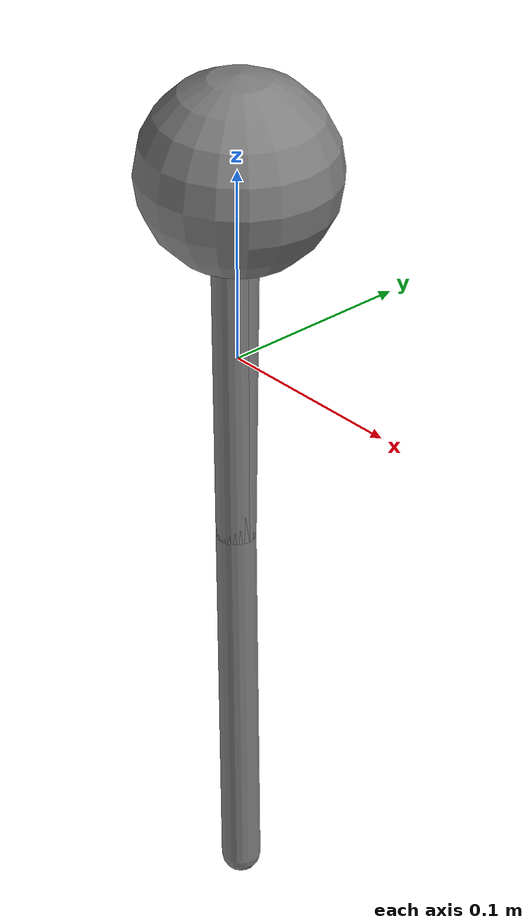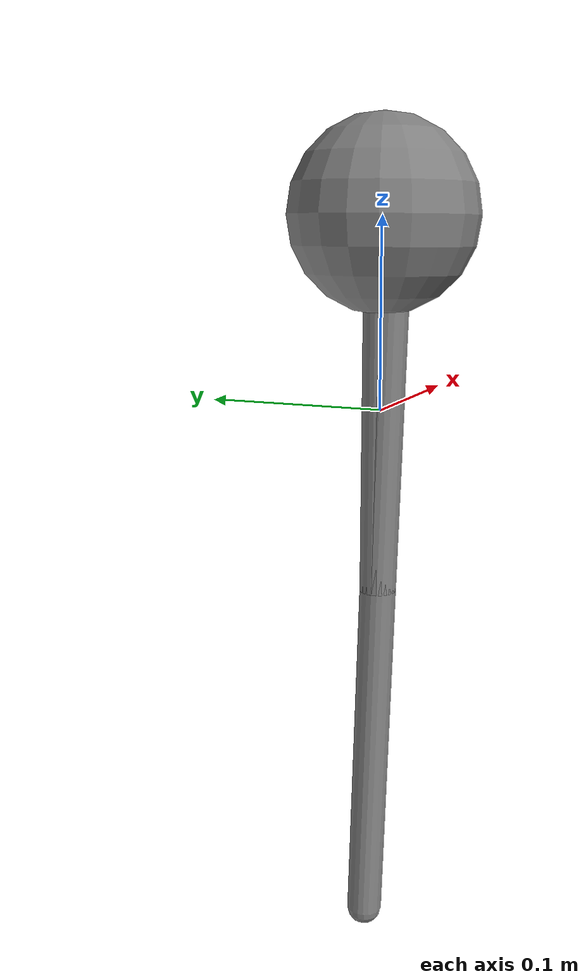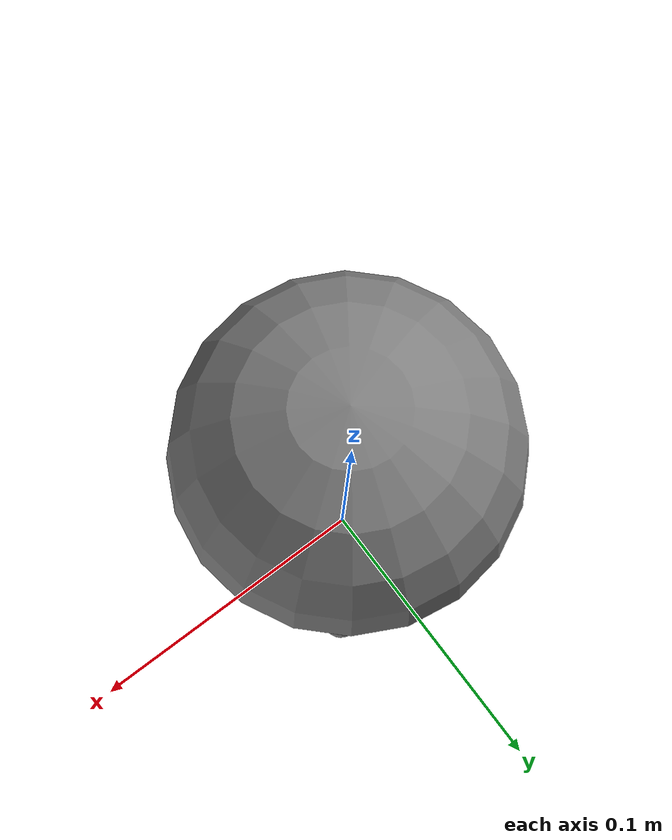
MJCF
<mujoco model="Active adhesion example">
  <!--
      Adding some fluid viscosity to prevent the hanging sphere from jiggling too much.
  -->
  <option viscosity="1"/>

  <size memory="10M"/>

  <visual>
    <headlight diffuse=".2 .2 .2"/>
  </visual>

  <default>
    <joint damping=".3" axis="0 1 0"/>
    <geom type="box" friction=".5"/>
    <default class="wall">
      <geom rgba=".5 .5 .5 .4"/>
    </default>
    <default class="mechanical">
      <geom rgba=".5 .5 .8 1"/>
      <tendon rgba=".5 .5 .8 1"/>
    </default>
    <default class="active_adhesion">
      <geom rgba=".8 .5 .5 1" margin=".01" gap=".01"/>
    </default>
    <default class="object">
      <geom rgba=".5 .8 .5 1" density="100"/>
    </default>
  </default>

  <worldbody>
    <light pos="0.4 -.15 .6" dir="-1 .5 -1" diffuse=".7 .7 .7"/>
    <light pos="-.4 -.15 .6" dir="1 .5 -1" diffuse=".7 .7 .7"/>

    <!-- ======= Beam ======= -->
    <body name="beam" pos="0 0 0" axisangle="0 1 0 0.9" >
      <!--density of the rod is ten times smaller than other objects (e.g. the ball) for a better point mass approximation-->
      <geom name="rod" type="cylinder" pos="0 0 0.0" size=".01 .1" density="100"/>
      <geom pos="0 0 -.1" type="capsule" size=".01 .2" euler="1.57 0 0"/>
      <joint name="pivot" pos="0 0 -0.1" axis="0 1 0" limited="false" damping=".05"/>
      <body name="ballbody" pos="0 0 0.1">
        <geom name="ballgeom" type="sphere" size=".05"/>
      </body>
    </body>
  </worldbody>
</mujoco>
